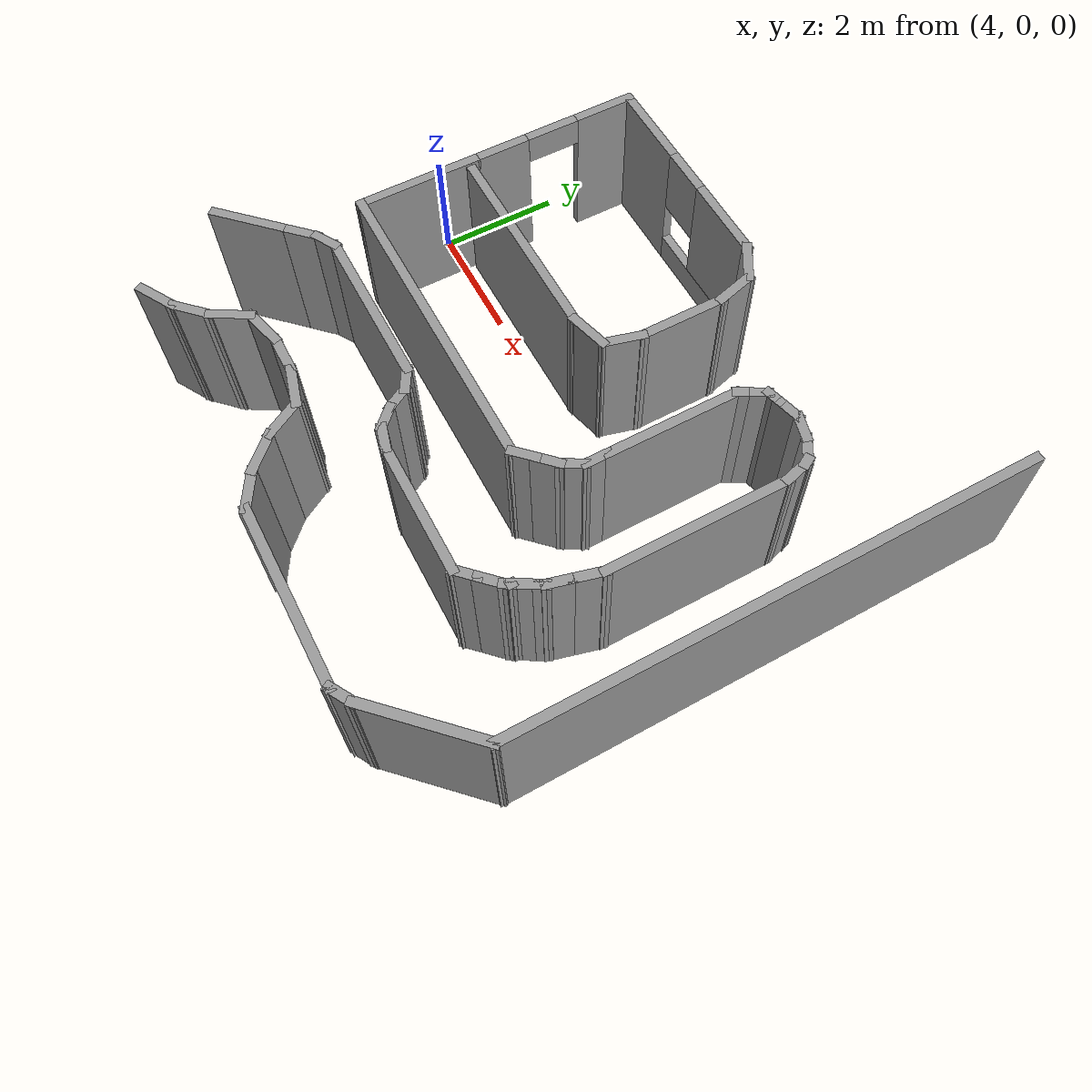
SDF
<sdf version="1.7">
 <model name="parcial_este_sii">
  <pose>1.2832 -0.231354 0 0 -0 0</pose>
  <link name="Wall_104">
   <collision name="Wall_104_Collision">
    <geometry><box><size>0.75 0.15 2.5</size></box></geometry>
    <pose>0 0 1.25 0 -0 0</pose>
   </collision>
   <visual name="Wall_104_Visual">
    <pose>0 0 1.25 0 -0 0</pose>
    <geometry><box><size>0.75 0.15 2.5</size></box></geometry>
    <material>
     <script><uri>file://media/materials/scripts/gazebo.material</uri><name>Gazebo/Grey</name></script>
     <ambient>1 1 1 1</ambient>
    </material>
    <meta><layer>0</layer></meta>
   </visual>
   <pose>3.4998 -4.7529 0 0 -0 0.523599</pose>
  </link>
  <link name="Wall_105">
   <collision name="Wall_105_Collision">
    <geometry><box><size>0.75 0.15 2.5</size></box></geometry>
    <pose>0 0 1.25 0 -0 0</pose>
   </collision>
   <visual name="Wall_105_Visual">
    <pose>0 0 1.25 0 -0 0</pose>
    <geometry><box><size>0.75 0.15 2.5</size></box></geometry>
    <material>
     <script><uri>file://media/materials/scripts/gazebo.material</uri><name>Gazebo/Grey</name></script>
     <ambient>1 1 1 1</ambient>
    </material>
    <meta><layer>0</layer></meta>
   </visual>
   <pose>3.97174 -4.39077 0 0 -0 0.785398</pose>
  </link>
  <link name="Wall_106">
   <collision name="Wall_106_Collision">
    <geometry><box><size>0.75 0.15 2.5</size></box></geometry>
    <pose>0 0 1.25 0 -0 0</pose>
   </collision>
   <visual name="Wall_106_Visual">
    <pose>0 0 1.25 0 -0 0</pose>
    <geometry><box><size>0.75 0.15 2.5</size></box></geometry>
    <material>
     <script><uri>file://media/materials/scripts/gazebo.material</uri><name>Gazebo/Grey</name></script>
     <ambient>1 1 1 1</ambient>
    </material>
    <meta><layer>0</layer></meta>
   </visual>
   <pose>4.33387 -3.91883 0 0 -0 1.0472</pose>
  </link>
  <link name="Wall_107">
   <collision name="Wall_107_Collision">
    <geometry><box><size>0.75 0.15 2.5</size></box></geometry>
    <pose>0 0 1.25 0 -0 0</pose>
   </collision>
   <visual name="Wall_107_Visual">
    <pose>0 0 1.25 0 -0 0</pose>
    <geometry><box><size>0.75 0.15 2.5</size></box></geometry>
    <material>
     <script><uri>file://media/materials/scripts/gazebo.material</uri><name>Gazebo/Grey</name></script>
     <ambient>1 1 1 1</ambient>
    </material>
    <meta><layer>0</layer></meta>
   </visual>
   <pose>4.77365 -3.58138 0 0 -0 0.261799</pose>
  </link>
  <link name="Wall_108">
   <collision name="Wall_108_Collision">
    <geometry><box><size>0.75 0.15 2.5</size></box></geometry>
    <pose>0 0 1.25 0 -0 0</pose>
   </collision>
   <visual name="Wall_108_Visual">
    <pose>0 0 1.25 0 -0 0</pose>
    <geometry><box><size>0.75 0.15 2.5</size></box></geometry>
    <material>
     <script><uri>file://media/materials/scripts/gazebo.material</uri><name>Gazebo/Grey</name></script>
     <ambient>1 1 1 1</ambient>
    </material>
    <meta><layer>0</layer></meta>
   </visual>
   <pose>5.36342 -3.50373 0 0 -0 0</pose>
  </link>
  <link name="Wall_109">
   <collision name="Wall_109_Collision">
    <geometry><box><size>0.75 0.15 2.5</size></box></geometry>
    <pose>0 0 1.25 0 -0 0</pose>
   </collision>
   <visual name="Wall_109_Visual">
    <pose>0 0 1.25 0 -0 0</pose>
    <geometry><box><size>0.75 0.15 2.5</size></box></geometry>
    <material>
     <script><uri>file://media/materials/scripts/gazebo.material</uri><name>Gazebo/Grey</name></script>
     <ambient>1 1 1 1</ambient>
    </material>
    <meta><layer>0</layer></meta>
   </visual>
   <pose>5.9532 -3.58138 0 0 -0 -0.261799</pose>
  </link>
  <link name="Wall_11">
   <collision name="Wall_11_Collision">
    <geometry><box><size>2.10889 0.15 2.5</size></box></geometry>
    <pose>0 0 1.25 0 -0 0</pose>
   </collision>
   <visual name="Wall_11_Visual">
    <pose>0 0 1.25 0 -0 0</pose>
    <geometry><box><size>2.10889 0.15 2.5</size></box></geometry>
    <material>
     <script><uri>file://media/materials/scripts/gazebo.material</uri><name>Gazebo/Grey</name></script>
     <ambient>1 1 1 1</ambient>
    </material>
    <meta><layer>0</layer></meta>
   </visual>
   <pose>3.29186 -0.374165 0 0 -0 -1.5708</pose>
  </link>
  <link name="Wall_110">
   <collision name="Wall_110_Collision">
    <geometry><box><size>0.75 0.15 2.5</size></box></geometry>
    <pose>0 0 1.25 0 -0 0</pose>
   </collision>
   <visual name="Wall_110_Visual">
    <pose>0 0 1.25 0 -0 0</pose>
    <geometry><box><size>0.75 0.15 2.5</size></box></geometry>
    <material>
     <script><uri>file://media/materials/scripts/gazebo.material</uri><name>Gazebo/Grey</name></script>
     <ambient>1 1 1 1</ambient>
    </material>
    <meta><layer>0</layer></meta>
   </visual>
   <pose>6.39298 -3.91883 0 0 -0 -1.0472</pose>
  </link>
  <link name="Wall_111">
   <collision name="Wall_111_Collision">
    <geometry><box><size>0.75 0.15 2.5</size></box></geometry>
    <pose>0 0 1.25 0 -0 0</pose>
   </collision>
   <visual name="Wall_111_Visual">
    <pose>0 0 1.25 0 -0 0</pose>
    <geometry><box><size>0.75 0.15 2.5</size></box></geometry>
    <material>
     <script><uri>file://media/materials/scripts/gazebo.material</uri><name>Gazebo/Grey</name></script>
     <ambient>1 1 1 1</ambient>
    </material>
    <meta><layer>0</layer></meta>
   </visual>
   <pose>6.75511 -4.39077 0 0 -0 -0.785398</pose>
  </link>
  <link name="Wall_112">
   <collision name="Wall_112_Collision">
    <geometry><box><size>0.75 0.15 2.5</size></box></geometry>
    <pose>0 0 1.25 0 -0 0</pose>
   </collision>
   <visual name="Wall_112_Visual">
    <pose>0 0 1.25 0 -0 0</pose>
    <geometry><box><size>0.75 0.15 2.5</size></box></geometry>
    <material>
     <script><uri>file://media/materials/scripts/gazebo.material</uri><name>Gazebo/Grey</name></script>
     <ambient>1 1 1 1</ambient>
    </material>
    <meta><layer>0</layer></meta>
   </visual>
   <pose>7.22705 -4.7529 0 0 -0 -0.523599</pose>
  </link>
  <link name="Wall_113">
   <collision name="Wall_113_Collision">
    <geometry><box><size>3 0.15 2.5</size></box></geometry>
    <pose>0 0 1.25 0 -0 0</pose>
   </collision>
   <visual name="Wall_113_Visual">
    <pose>0 0 1.25 0 -0 0</pose>
    <geometry><box><size>3 0.15 2.5</size></box></geometry>
    <material>
     <script><uri>file://media/materials/scripts/gazebo.material</uri><name>Gazebo/Grey</name></script>
     <ambient>1 1 1 1</ambient>
    </material>
    <meta><layer>0</layer></meta>
   </visual>
   <pose>8.91186 -4.9029 0 0 -0 0</pose>
  </link>
  <link name="Wall_114">
   <collision name="Wall_114_Collision">
    <geometry><box><size>0.5 0.15 2.5</size></box></geometry>
    <pose>0 0 1.25 0 -0 0</pose>
   </collision>
   <visual name="Wall_114_Visual">
    <pose>0 0 1.25 0 -0 0</pose>
    <geometry><box><size>0.5 0.15 2.5</size></box></geometry>
    <material>
     <script><uri>file://media/materials/scripts/gazebo.material</uri><name>Gazebo/Grey</name></script>
     <ambient>1 1 1 1</ambient>
    </material>
    <meta><layer>0</layer></meta>
   </visual>
   <pose>10.4884 -4.8154 0 0 -0 0.523599</pose>
  </link>
  <link name="Wall_116">
   <collision name="Wall_116_Collision">
    <geometry><box><size>2 0.15 2.5</size></box></geometry>
    <pose>0 0 1.25 0 -0 0</pose>
   </collision>
   <visual name="Wall_116_Visual">
    <pose>0 0 1.25 0 -0 0</pose>
    <geometry><box><size>2 0.15 2.5</size></box></geometry>
    <material>
     <script><uri>file://media/materials/scripts/gazebo.material</uri><name>Gazebo/Grey</name></script>
     <ambient>1 1 1 1</ambient>
    </material>
    <meta><layer>0</layer></meta>
   </visual>
   <pose>11.294 -4.07383 0 0 -0 0.785398</pose>
  </link>
  <link name="Wall_117">
   <collision name="Wall_117_Collision">
    <geometry><box><size>8.5 0.15 2.5</size></box></geometry>
    <pose>0 0 1.25 0 -0 0</pose>
   </collision>
   <visual name="Wall_117_Visual">
    <pose>0 0 1.25 0 -0 0</pose>
    <geometry><box><size>8.5 0.15 2.5</size></box></geometry>
    <material>
     <script><uri>file://media/materials/scripts/gazebo.material</uri><name>Gazebo/Grey</name></script>
     <ambient>1 1 1 1</ambient>
    </material>
    <meta><layer>0</layer></meta>
   </visual>
   <pose>11.9481 0.755247 0 0 -0 1.5708</pose>
  </link>
  <link name="Wall_12">
   <collision name="Wall_12_Collision">
    <geometry><box><size>5.25 0.15 2.5</size></box></geometry>
    <pose>0 0 1.25 0 -0 0</pose>
   </collision>
   <visual name="Wall_12_Visual">
    <pose>0 0 1.25 0 -0 0</pose>
    <geometry><box><size>5.25 0.15 2.5</size></box></geometry>
    <material>
     <script><uri>file://media/materials/scripts/gazebo.material</uri><name>Gazebo/Grey</name></script>
     <ambient>1 1 1 1</ambient>
    </material>
    <meta><layer>0</layer></meta>
   </visual>
   <pose>5.84186 -1.35361 0 0 -0 0</pose>
  </link>
  <link name="Wall_13">
   <collision name="Wall_13_Collision">
    <geometry><box><size>0.5 0.15 2.5</size></box></geometry>
    <pose>0 0 1.25 0 -0 0</pose>
   </collision>
   <visual name="Wall_13_Visual">
    <pose>0 0 1.25 0 -0 0</pose>
    <geometry><box><size>0.5 0.15 2.5</size></box></geometry>
    <material>
     <script><uri>file://media/materials/scripts/gazebo.material</uri><name>Gazebo/Grey</name></script>
     <ambient>1 1 1 1</ambient>
    </material>
    <meta><layer>0</layer></meta>
   </visual>
   <pose>8.5156 -1.22986 0 0 -0 0.785398</pose>
  </link>
  <link name="Wall_14">
   <collision name="Wall_14_Collision">
    <geometry><box><size>0.5 0.15 2.5</size></box></geometry>
    <pose>0 0 1.25 0 -0 0</pose>
   </collision>
   <visual name="Wall_14_Visual">
    <pose>0 0 1.25 0 -0 0</pose>
    <geometry><box><size>0.5 0.15 2.5</size></box></geometry>
    <material>
     <script><uri>file://media/materials/scripts/gazebo.material</uri><name>Gazebo/Grey</name></script>
     <ambient>1 1 1 1</ambient>
    </material>
    <meta><layer>0</layer></meta>
   </visual>
   <pose>8.76309 -0.982378 0 0 -0 0.785398</pose>
  </link>
  <link name="Wall_15">
   <collision name="Wall_15_Collision">
    <geometry><box><size>0.5 0.15 2.5</size></box></geometry>
    <pose>0 0 1.25 0 -0 0</pose>
   </collision>
   <visual name="Wall_15_Visual">
    <pose>0 0 1.25 0 -0 0</pose>
    <geometry><box><size>0.5 0.15 2.5</size></box></geometry>
    <material>
     <script><uri>file://media/materials/scripts/gazebo.material</uri><name>Gazebo/Grey</name></script>
     <ambient>1 1 1 1</ambient>
    </material>
    <meta><layer>0</layer></meta>
   </visual>
   <pose>8.97433 -0.707079 0 0 -0 1.0472</pose>
  </link>
  <link name="Wall_16">
   <collision name="Wall_16_Collision">
    <geometry><box><size>0.5 0.15 2.5</size></box></geometry>
    <pose>0 0 1.25 0 -0 0</pose>
   </collision>
   <visual name="Wall_16_Visual">
    <pose>0 0 1.25 0 -0 0</pose>
    <geometry><box><size>0.5 0.15 2.5</size></box></geometry>
    <material>
     <script><uri>file://media/materials/scripts/gazebo.material</uri><name>Gazebo/Grey</name></script>
     <ambient>1 1 1 1</ambient>
    </material>
    <meta><layer>0</layer></meta>
   </visual>
   <pose>9.06184 -0.380525 0 0 -0 1.5708</pose>
  </link>
  <link name="Wall_17">
   <collision name="Wall_17_Collision">
    <geometry><box><size>2.25 0.15 2.5</size></box></geometry>
    <pose>0 0 1.25 0 -0 0</pose>
   </collision>
   <visual name="Wall_17_Visual">
    <pose>0 0 1.25 0 -0 0</pose>
    <geometry><box><size>2.25 0.15 2.5</size></box></geometry>
    <material>
     <script><uri>file://media/materials/scripts/gazebo.material</uri><name>Gazebo/Grey</name></script>
     <ambient>1 1 1 1</ambient>
    </material>
    <meta><layer>0</layer></meta>
   </visual>
   <pose>9.06184 0.844475 0 0 -0 1.5708</pose>
  </link>
  <link name="Wall_18">
   <collision name="Wall_18_Collision">
    <geometry><box><size>0.25 0.15 2.5</size></box></geometry>
    <pose>0 0 1.25 0 -0 0</pose>
   </collision>
   <visual name="Wall_18_Visual">
    <pose>0 0 1.25 0 -0 0</pose>
    <geometry><box><size>0.25 0.15 2.5</size></box></geometry>
    <material>
     <script><uri>file://media/materials/scripts/gazebo.material</uri><name>Gazebo/Grey</name></script>
     <ambient>1 1 1 1</ambient>
    </material>
    <meta><layer>0</layer></meta>
   </visual>
   <pose>9.08684 1.93778 0 0 -0 1.0472</pose>
  </link>
  <link name="Wall_19">
   <collision name="Wall_19_Collision">
    <geometry><box><size>0.5 0.15 2.5</size></box></geometry>
    <pose>0 0 1.25 0 -0 0</pose>
   </collision>
   <visual name="Wall_19_Visual">
    <pose>0 0 1.25 0 -0 0</pose>
    <geometry><box><size>0.5 0.15 2.5</size></box></geometry>
    <material>
     <script><uri>file://media/materials/scripts/gazebo.material</uri><name>Gazebo/Grey</name></script>
     <ambient>1 1 1 1</ambient>
    </material>
    <meta><layer>0</layer></meta>
   </visual>
   <pose>9.19933 2.13263 0 0 -0 1.0472</pose>
  </link>
  <link name="Wall_20">
   <collision name="Wall_20_Collision">
    <geometry><box><size>0.25 0.15 2.5</size></box></geometry>
    <pose>0 0 1.25 0 -0 0</pose>
   </collision>
   <visual name="Wall_20_Visual">
    <pose>0 0 1.25 0 -0 0</pose>
    <geometry><box><size>0.25 0.15 2.5</size></box></geometry>
    <material>
     <script><uri>file://media/materials/scripts/gazebo.material</uri><name>Gazebo/Grey</name></script>
     <ambient>1 1 1 1</ambient>
    </material>
    <meta><layer>0</layer></meta>
   </visual>
   <pose>9.33513 2.29713 0 0 -0 0.261799</pose>
  </link>
  <link name="Wall_21">
   <collision name="Wall_21_Collision">
    <geometry><box><size>0.25 0.15 2.5</size></box></geometry>
    <pose>0 0 1.25 0 -0 0</pose>
   </collision>
   <visual name="Wall_21_Visual">
    <pose>0 0 1.25 0 -0 0</pose>
    <geometry><box><size>0.25 0.15 2.5</size></box></geometry>
    <material>
     <script><uri>file://media/materials/scripts/gazebo.material</uri><name>Gazebo/Grey</name></script>
     <ambient>1 1 1 1</ambient>
    </material>
    <meta><layer>0</layer></meta>
   </visual>
   <pose>9.43172 2.32301 0 0 -0 0.261799</pose>
  </link>
  <link name="Wall_22">
   <collision name="Wall_22_Collision">
    <geometry><box><size>0.5 0.15 2.5</size></box></geometry>
    <pose>0 0 1.25 0 -0 0</pose>
   </collision>
   <visual name="Wall_22_Visual">
    <pose>0 0 1.25 0 -0 0</pose>
    <geometry><box><size>0.5 0.15 2.5</size></box></geometry>
    <material>
     <script><uri>file://media/materials/scripts/gazebo.material</uri><name>Gazebo/Grey</name></script>
     <ambient>1 1 1 1</ambient>
    </material>
    <meta><layer>0</layer></meta>
   </visual>
   <pose>9.64906 2.38124 0 0 -0 0.261799</pose>
  </link>
  <link name="Wall_23">
   <collision name="Wall_23_Collision">
    <geometry><box><size>0.5 0.15 2.5</size></box></geometry>
    <pose>0 0 1.25 0 -0 0</pose>
   </collision>
   <visual name="Wall_23_Visual">
    <pose>0 0 1.25 0 -0 0</pose>
    <geometry><box><size>0.5 0.15 2.5</size></box></geometry>
    <material>
     <script><uri>file://media/materials/scripts/gazebo.material</uri><name>Gazebo/Grey</name></script>
     <ambient>1 1 1 1</ambient>
    </material>
    <meta><layer>0</layer></meta>
   </visual>
   <pose>9.98713 2.38124 0 0 -0 -0.261799</pose>
  </link>
  <link name="Wall_24">
   <collision name="Wall_24_Collision">
    <geometry><box><size>0.5 0.15 2.5</size></box></geometry>
    <pose>0 0 1.25 0 -0 0</pose>
   </collision>
   <visual name="Wall_24_Visual">
    <pose>0 0 1.25 0 -0 0</pose>
    <geometry><box><size>0.5 0.15 2.5</size></box></geometry>
    <material>
     <script><uri>file://media/materials/scripts/gazebo.material</uri><name>Gazebo/Grey</name></script>
     <ambient>1 1 1 1</ambient>
    </material>
    <meta><layer>0</layer></meta>
   </visual>
   <pose>10.3077 2.24845 0 0 -0 -0.523599</pose>
  </link>
  <link name="Wall_25">
   <collision name="Wall_25_Collision">
    <geometry><box><size>0.25 0.15 2.5</size></box></geometry>
    <pose>0 0 1.25 0 -0 0</pose>
   </collision>
   <visual name="Wall_25_Visual">
    <pose>0 0 1.25 0 -0 0</pose>
    <geometry><box><size>0.25 0.15 2.5</size></box></geometry>
    <material>
     <script><uri>file://media/materials/scripts/gazebo.material</uri><name>Gazebo/Grey</name></script>
     <ambient>1 1 1 1</ambient>
    </material>
    <meta><layer>0</layer></meta>
   </visual>
   <pose>10.4843 2.11765 0 0 -0 -1.0472</pose>
  </link>
  <link name="Wall_26">
   <collision name="Wall_26_Collision">
    <geometry><box><size>0.5 0.15 2.5</size></box></geometry>
    <pose>0 0 1.25 0 -0 0</pose>
   </collision>
   <visual name="Wall_26_Visual">
    <pose>0 0 1.25 0 -0 0</pose>
    <geometry><box><size>0.5 0.15 2.5</size></box></geometry>
    <material>
     <script><uri>file://media/materials/scripts/gazebo.material</uri><name>Gazebo/Grey</name></script>
     <ambient>1 1 1 1</ambient>
    </material>
    <meta><layer>0</layer></meta>
   </visual>
   <pose>10.5546 1.90531 0 0 -0 -1.309</pose>
  </link>
  <link name="Wall_27">
   <collision name="Wall_27_Collision">
    <geometry><box><size>3 0.15 2.5</size></box></geometry>
    <pose>0 0 1.25 0 -0 0</pose>
   </collision>
   <visual name="Wall_27_Visual">
    <pose>0 0 1.25 0 -0 0</pose>
    <geometry><box><size>3 0.15 2.5</size></box></geometry>
    <material>
     <script><uri>file://media/materials/scripts/gazebo.material</uri><name>Gazebo/Grey</name></script>
     <ambient>1 1 1 1</ambient>
    </material>
    <meta><layer>0</layer></meta>
   </visual>
   <pose>10.5999 0.311274 0 0 -0 -1.5708</pose>
  </link>
  <link name="Wall_28">
   <collision name="Wall_28_Collision">
    <geometry><box><size>0.5 0.15 2.5</size></box></geometry>
    <pose>0 0 1.25 0 -0 0</pose>
   </collision>
   <visual name="Wall_28_Visual">
    <pose>0 0 1.25 0 -0 0</pose>
    <geometry><box><size>0.5 0.15 2.5</size></box></geometry>
    <material>
     <script><uri>file://media/materials/scripts/gazebo.material</uri><name>Gazebo/Grey</name></script>
     <ambient>1 1 1 1</ambient>
    </material>
    <meta><layer>0</layer></meta>
   </visual>
   <pose>10.5546 -1.28276 0 0 -0 -1.8326</pose>
  </link>
  <link name="Wall_29">
   <collision name="Wall_29_Collision">
    <geometry><box><size>0.25 0.15 2.5</size></box></geometry>
    <pose>0 0 1.25 0 -0 0</pose>
   </collision>
   <visual name="Wall_29_Visual">
    <pose>0 0 1.25 0 -0 0</pose>
    <geometry><box><size>0.25 0.15 2.5</size></box></geometry>
    <material>
     <script><uri>file://media/materials/scripts/gazebo.material</uri><name>Gazebo/Grey</name></script>
     <ambient>1 1 1 1</ambient>
    </material>
    <meta><layer>0</layer></meta>
   </visual>
   <pose>10.4963 -1.5001 0 0 -0 -1.8326</pose>
  </link>
  <link name="Wall_30">
   <collision name="Wall_30_Collision">
    <geometry><box><size>0.5 0.15 2.5</size></box></geometry>
    <pose>0 0 1.25 0 -0 0</pose>
   </collision>
   <visual name="Wall_30_Visual">
    <pose>0 0 1.25 0 -0 0</pose>
    <geometry><box><size>0.5 0.15 2.5</size></box></geometry>
    <material>
     <script><uri>file://media/materials/scripts/gazebo.material</uri><name>Gazebo/Grey</name></script>
     <ambient>1 1 1 1</ambient>
    </material>
    <meta><layer>0</layer></meta>
   </visual>
   <pose>10.4381 -1.71743 0 0 -0 -1.8326</pose>
  </link>
  <link name="Wall_31">
   <collision name="Wall_31_Collision">
    <geometry><box><size>0.25 0.15 2.5</size></box></geometry>
    <pose>0 0 1.25 0 -0 0</pose>
   </collision>
   <visual name="Wall_31_Visual">
    <pose>0 0 1.25 0 -0 0</pose>
    <geometry><box><size>0.25 0.15 2.5</size></box></geometry>
    <material>
     <script><uri>file://media/materials/scripts/gazebo.material</uri><name>Gazebo/Grey</name></script>
     <ambient>1 1 1 1</ambient>
    </material>
    <meta><layer>0</layer></meta>
   </visual>
   <pose>10.3678 -1.92977 0 0 -0 -2.0944</pose>
  </link>
  <link name="Wall_32">
   <collision name="Wall_32_Collision">
    <geometry><box><size>0.5 0.15 2.5</size></box></geometry>
    <pose>0 0 1.25 0 -0 0</pose>
   </collision>
   <visual name="Wall_32_Visual">
    <pose>0 0 1.25 0 -0 0</pose>
    <geometry><box><size>0.5 0.15 2.5</size></box></geometry>
    <material>
     <script><uri>file://media/materials/scripts/gazebo.material</uri><name>Gazebo/Grey</name></script>
     <ambient>1 1 1 1</ambient>
    </material>
    <meta><layer>0</layer></meta>
   </visual>
   <pose>10.2553 -2.12462 0 0 -0 -2.0944</pose>
  </link>
  <link name="Wall_33">
   <collision name="Wall_33_Collision">
    <geometry><box><size>0.15 0.15 2.5</size></box></geometry>
    <pose>0 0 1.25 0 -0 0</pose>
   </collision>
   <visual name="Wall_33_Visual">
    <pose>0 0 1.25 0 -0 0</pose>
    <geometry><box><size>0.15 0.15 2.5</size></box></geometry>
    <material>
     <script><uri>file://media/materials/scripts/gazebo.material</uri><name>Gazebo/Grey</name></script>
     <ambient>1 1 1 1</ambient>
    </material>
    <meta><layer>0</layer></meta>
   </visual>
   <pose>10.1678 -2.27618 0 0 -0 0</pose>
  </link>
  <link name="Wall_34">
   <collision name="Wall_34_Collision">
    <geometry><box><size>0.25 0.15 2.5</size></box></geometry>
    <pose>0 0 1.25 0 -0 0</pose>
   </collision>
   <visual name="Wall_34_Visual">
    <pose>0 0 1.25 0 -0 0</pose>
    <geometry><box><size>0.25 0.15 2.5</size></box></geometry>
    <material>
     <script><uri>file://media/materials/scripts/gazebo.material</uri><name>Gazebo/Grey</name></script>
     <ambient>1 1 1 1</ambient>
    </material>
    <meta><layer>0</layer></meta>
   </visual>
   <pose>10.1428 -2.31948 0 0 -0 -2.0944</pose>
  </link>
  <link name="Wall_35">
   <collision name="Wall_35_Collision">
    <geometry><box><size>0.5 0.15 2.5</size></box></geometry>
    <pose>0 0 1.25 0 -0 0</pose>
   </collision>
   <visual name="Wall_35_Visual">
    <pose>0 0 1.25 0 -0 0</pose>
    <geometry><box><size>0.5 0.15 2.5</size></box></geometry>
    <material>
     <script><uri>file://media/materials/scripts/gazebo.material</uri><name>Gazebo/Grey</name></script>
     <ambient>1 1 1 1</ambient>
    </material>
    <meta><layer>0</layer></meta>
   </visual>
   <pose>9.99407 -2.48652 0 0 -0 -2.35619</pose>
  </link>
  <link name="Wall_36">
   <collision name="Wall_36_Collision">
    <geometry><box><size>0.5 0.15 2.5</size></box></geometry>
    <pose>0 0 1.25 0 -0 0</pose>
   </collision>
   <visual name="Wall_36_Visual">
    <pose>0 0 1.25 0 -0 0</pose>
    <geometry><box><size>0.5 0.15 2.5</size></box></geometry>
    <material>
     <script><uri>file://media/materials/scripts/gazebo.material</uri><name>Gazebo/Grey</name></script>
     <ambient>1 1 1 1</ambient>
    </material>
    <meta><layer>0</layer></meta>
   </visual>
   <pose>9.74658 -2.73401 0 0 -0 -2.35619</pose>
  </link>
  <link name="Wall_37">
   <collision name="Wall_37_Collision">
    <geometry><box><size>2.25 0.15 2.5</size></box></geometry>
    <pose>0 0 1.25 0 -0 0</pose>
   </collision>
   <visual name="Wall_37_Visual">
    <pose>0 0 1.25 0 -0 0</pose>
    <geometry><box><size>2.25 0.15 2.5</size></box></geometry>
    <material>
     <script><uri>file://media/materials/scripts/gazebo.material</uri><name>Gazebo/Grey</name></script>
     <ambient>1 1 1 1</ambient>
    </material>
    <meta><layer>0</layer></meta>
   </visual>
   <pose>8.57283 -2.85776 0 0 -0 3.14159</pose>
  </link>
  <link name="Wall_38">
   <collision name="Wall_38_Collision">
    <geometry><box><size>0.5 0.15 2.5</size></box></geometry>
    <pose>0 0 1.25 0 -0 0</pose>
   </collision>
   <visual name="Wall_38_Visual">
    <pose>0 0 1.25 0 -0 0</pose>
    <geometry><box><size>0.5 0.15 2.5</size></box></geometry>
    <material>
     <script><uri>file://media/materials/scripts/gazebo.material</uri><name>Gazebo/Grey</name></script>
     <ambient>1 1 1 1</ambient>
    </material>
    <meta><layer>0</layer></meta>
   </visual>
   <pose>7.3538 -2.81246 0 0 -0 2.87979</pose>
  </link>
  <link name="Wall_39">
   <collision name="Wall_39_Collision">
    <geometry><box><size>0.5 0.15 2.5</size></box></geometry>
    <pose>0 0 1.25 0 -0 0</pose>
   </collision>
   <visual name="Wall_39_Visual">
    <pose>0 0 1.25 0 -0 0</pose>
    <geometry><box><size>0.5 0.15 2.5</size></box></geometry>
    <material>
     <script><uri>file://media/materials/scripts/gazebo.material</uri><name>Gazebo/Grey</name></script>
     <ambient>1 1 1 1</ambient>
    </material>
    <meta><layer>0</layer></meta>
   </visual>
   <pose>7.06102 -2.64343 0 0 -0 2.35619</pose>
  </link>
  <link name="Wall_40">
   <collision name="Wall_40_Collision">
    <geometry><box><size>0.5 0.15 2.5</size></box></geometry>
    <pose>0 0 1.25 0 -0 0</pose>
   </collision>
   <visual name="Wall_40_Visual">
    <pose>0 0 1.25 0 -0 0</pose>
    <geometry><box><size>0.5 0.15 2.5</size></box></geometry>
    <material>
     <script><uri>file://media/materials/scripts/gazebo.material</uri><name>Gazebo/Grey</name></script>
     <ambient>1 1 1 1</ambient>
    </material>
    <meta><layer>0</layer></meta>
   </visual>
   <pose>6.84977 -2.36813 0 0 -0 2.0944</pose>
  </link>
  <link name="Wall_41">
   <collision name="Wall_41_Collision">
    <geometry><box><size>0.5 0.15 2.5</size></box></geometry>
    <pose>0 0 1.25 0 -0 0</pose>
   </collision>
   <visual name="Wall_41_Visual">
    <pose>0 0 1.25 0 -0 0</pose>
    <geometry><box><size>0.5 0.15 2.5</size></box></geometry>
    <material>
     <script><uri>file://media/materials/scripts/gazebo.material</uri><name>Gazebo/Grey</name></script>
     <ambient>1 1 1 1</ambient>
    </material>
    <meta><layer>0</layer></meta>
   </visual>
   <pose>6.61072 -2.12907 0 0 -0 2.61799</pose>
  </link>
  <link name="Wall_42">
   <collision name="Wall_42_Collision">
    <geometry><box><size>2.75 0.15 2.5</size></box></geometry>
    <pose>0 0 1.25 0 -0 0</pose>
   </collision>
   <visual name="Wall_42_Visual">
    <pose>0 0 1.25 0 -0 0</pose>
    <geometry><box><size>2.75 0.15 2.5</size></box></geometry>
    <material>
     <script><uri>file://media/materials/scripts/gazebo.material</uri><name>Gazebo/Grey</name></script>
     <ambient>1 1 1 1</ambient>
    </material>
    <meta><layer>0</layer></meta>
   </visual>
   <pose>5.15916 -2.04157 0 0 -0 3.14159</pose>
  </link>
  <link name="Wall_43">
   <collision name="Wall_43_Collision">
    <geometry><box><size>0.5 0.15 2.5</size></box></geometry>
    <pose>0 0 1.25 0 -0 0</pose>
   </collision>
   <visual name="Wall_43_Visual">
    <pose>0 0 1.25 0 -0 0</pose>
    <geometry><box><size>0.5 0.15 2.5</size></box></geometry>
    <material>
     <script><uri>file://media/materials/scripts/gazebo.material</uri><name>Gazebo/Grey</name></script>
     <ambient>1 1 1 1</ambient>
    </material>
    <meta><layer>0</layer></meta>
   </visual>
   <pose>3.70761 -2.12907 0 0 -0 -2.61799</pose>
  </link>
  <link name="Wall_44">
   <collision name="Wall_44_Collision">
    <geometry><box><size>0.75 0.15 2.5</size></box></geometry>
    <pose>0 0 1.25 0 -0 0</pose>
   </collision>
   <visual name="Wall_44_Visual">
    <pose>0 0 1.25 0 -0 0</pose>
    <geometry><box><size>0.75 0.15 2.5</size></box></geometry>
    <material>
     <script><uri>file://media/materials/scripts/gazebo.material</uri><name>Gazebo/Grey</name></script>
     <ambient>1 1 1 1</ambient>
    </material>
    <meta><layer>0</layer></meta>
   </visual>
   <pose>3.34392 -2.4287 0 0 -0 -2.35619</pose>
  </link>
  <link name="Wall_47">
   <collision name="Wall_47_Collision">
    <geometry><box><size>1.25 0.15 2.5</size></box></geometry>
    <pose>0 0 1.25 0 -0 0</pose>
   </collision>
   <visual name="Wall_47_Visual">
    <pose>0 0 1.25 0 -0 0</pose>
    <geometry><box><size>1.25 0.15 2.5</size></box></geometry>
    <material>
     <script><uri>file://media/materials/scripts/gazebo.material</uri><name>Gazebo/Grey</name></script>
     <ambient>1 1 1 1</ambient>
    </material>
    <meta><layer>0</layer></meta>
   </visual>
   <pose>2.74288 -3.02975 0 0 -0 -2.35619</pose>
  </link>
  <link name="Wall_70">
   <pose>3.29186 2.03028 0 0 -0 1.5708</pose>
   <visual name="Wall_70_Visual_0">
    <pose>-0.984855 0 1.25 0 -0 0</pose>
    <geometry><box><size>1.03029 0.15 2.5</size></box></geometry>
    <material>
     <script><uri>file://media/materials/scripts/gazebo.material</uri><name>Gazebo/Grey</name></script>
     <ambient>1 1 1 1</ambient>
    </material>
    <meta><layer>0</layer></meta>
   </visual>
   <collision name="Wall_70_Collision_0">
    <geometry><box><size>1.03029 0.15 2.5</size></box></geometry>
    <pose>-0.984855 0 1.25 0 -0 0</pose>
   </collision>
   <visual name="Wall_70_Visual_1">
    <pose>0.965145 0 1.25 0 -0 0</pose>
    <geometry><box><size>1.06971 0.15 2.5</size></box></geometry>
    <material>
     <script><uri>file://media/materials/scripts/gazebo.material</uri><name>Gazebo/Grey</name></script>
     <ambient>1 1 1 1</ambient>
    </material>
    <meta><layer>0</layer></meta>
   </visual>
   <collision name="Wall_70_Collision_1">
    <geometry><box><size>1.06971 0.15 2.5</size></box></geometry>
    <pose>0.965145 0 1.25 0 -0 0</pose>
   </collision>
   <visual name="Wall_70_Visual_2">
    <pose>-0.01971 0 2.25 0 -0 0</pose>
    <geometry><box><size>0.9 0.15 0.5</size></box></geometry>
    <material>
     <script><uri>file://media/materials/scripts/gazebo.material</uri><name>Gazebo/Grey</name></script>
     <ambient>1 1 1 1</ambient>
    </material>
    <meta><layer>0</layer></meta>
   </visual>
   <collision name="Wall_70_Collision_2">
    <geometry><box><size>0.9 0.15 0.5</size></box></geometry>
    <pose>-0.01971 0 2.25 0 -0 0</pose>
   </collision>
  </link>
  <link name="Wall_71">
   <pose>5.09186 3.45528 0 0 -0 0</pose>
   <visual name="Wall_71_Visual_0">
    <pose>-1.11158 0 1.25 0 -0 0</pose>
    <geometry><box><size>1.52683 0.15 2.5</size></box></geometry>
    <material>
     <script><uri>file://media/materials/scripts/gazebo.material</uri><name>Gazebo/Grey</name></script>
     <ambient>1 1 1 1</ambient>
    </material>
    <meta><layer>0</layer></meta>
   </visual>
   <collision name="Wall_71_Collision_0">
    <geometry><box><size>1.52683 0.15 2.5</size></box></geometry>
    <pose>-1.11158 0 1.25 0 -0 0</pose>
   </collision>
   <visual name="Wall_71_Visual_1">
    <pose>0.763418 0 0.25 0 -0 0</pose>
    <geometry><box><size>2.22316 0.15 0.5</size></box></geometry>
    <material>
     <script><uri>file://media/materials/scripts/gazebo.material</uri><name>Gazebo/Grey</name></script>
     <ambient>1 1 1 1</ambient>
    </material>
    <meta><layer>0</layer></meta>
   </visual>
   <collision name="Wall_71_Collision_1">
    <geometry><box><size>2.22316 0.15 0.5</size></box></geometry>
    <pose>0.763418 0 0.25 0 -0 0</pose>
   </collision>
   <visual name="Wall_71_Visual_2">
    <pose>1.16342 0 1.5 0 -0 0</pose>
    <geometry><box><size>1.42317 0.15 2</size></box></geometry>
    <material>
     <script><uri>file://media/materials/scripts/gazebo.material</uri><name>Gazebo/Grey</name></script>
     <ambient>1 1 1 1</ambient>
    </material>
    <meta><layer>0</layer></meta>
   </visual>
   <collision name="Wall_71_Collision_2">
    <geometry><box><size>1.42317 0.15 2</size></box></geometry>
    <pose>1.16342 0 1.5 0 -0 0</pose>
   </collision>
   <visual name="Wall_71_Visual_3">
    <pose>0.051835 0 1.9 0 -0 0</pose>
    <geometry><box><size>0.8 0.15 1.2</size></box></geometry>
    <material>
     <script><uri>file://media/materials/scripts/gazebo.material</uri><name>Gazebo/Grey</name></script>
     <ambient>1 1 1 1</ambient>
    </material>
    <meta><layer>0</layer></meta>
   </visual>
   <collision name="Wall_71_Collision_3">
    <geometry><box><size>0.8 0.15 1.2</size></box></geometry>
    <pose>0.051835 0 1.9 0 -0 0</pose>
   </collision>
  </link>
  <link name="Wall_72">
   <collision name="Wall_72_Collision">
    <geometry><box><size>0.75 0.15 2.5</size></box></geometry>
    <pose>0 0 1.25 0 -0 0</pose>
   </collision>
   <visual name="Wall_72_Visual">
    <pose>0 0 1.25 0 -0 0</pose>
    <geometry><box><size>0.75 0.15 2.5</size></box></geometry>
    <material>
     <script><uri>file://media/materials/scripts/gazebo.material</uri><name>Gazebo/Grey</name></script>
     <ambient>1 1 1 1</ambient>
    </material>
    <meta><layer>0</layer></meta>
   </visual>
   <pose>7.15167 3.30528 0 0 -0 -0.523599</pose>
  </link>
  <link name="Wall_73">
   <collision name="Wall_73_Collision">
    <geometry><box><size>0.75 0.15 2.5</size></box></geometry>
    <pose>0 0 1.25 0 -0 0</pose>
   </collision>
   <visual name="Wall_73_Visual">
    <pose>0 0 1.25 0 -0 0</pose>
    <geometry><box><size>0.75 0.15 2.5</size></box></geometry>
    <material>
     <script><uri>file://media/materials/scripts/gazebo.material</uri><name>Gazebo/Grey</name></script>
     <ambient>1 1 1 1</ambient>
    </material>
    <meta><layer>0</layer></meta>
   </visual>
   <pose>7.48912 2.8655 0 0 -0 -1.309</pose>
  </link>
  <link name="Wall_74">
   <collision name="Wall_74_Collision">
    <geometry><box><size>1.5 0.15 2.5</size></box></geometry>
    <pose>0 0 1.25 0 -0 0</pose>
   </collision>
   <visual name="Wall_74_Visual">
    <pose>0 0 1.25 0 -0 0</pose>
    <geometry><box><size>1.5 0.15 2.5</size></box></geometry>
    <material>
     <script><uri>file://media/materials/scripts/gazebo.material</uri><name>Gazebo/Grey</name></script>
     <ambient>1 1 1 1</ambient>
    </material>
    <meta><layer>0</layer></meta>
   </visual>
   <pose>7.56677 1.90072 0 0 -0 -1.5708</pose>
  </link>
  <link name="Wall_75">
   <collision name="Wall_75_Collision">
    <geometry><box><size>0.75 0.15 2.5</size></box></geometry>
    <pose>0 0 1.25 0 -0 0</pose>
   </collision>
   <visual name="Wall_75_Visual">
    <pose>0 0 1.25 0 -0 0</pose>
    <geometry><box><size>0.75 0.15 2.5</size></box></geometry>
    <material>
     <script><uri>file://media/materials/scripts/gazebo.material</uri><name>Gazebo/Grey</name></script>
     <ambient>1 1 1 1</ambient>
    </material>
    <meta><layer>0</layer></meta>
   </visual>
   <pose>7.48912 0.935945 0 0 -0 -1.8326</pose>
  </link>
  <link name="Wall_76">
   <collision name="Wall_76_Collision">
    <geometry><box><size>0.75 0.15 2.5</size></box></geometry>
    <pose>0 0 1.25 0 -0 0</pose>
   </collision>
   <visual name="Wall_76_Visual">
    <pose>0 0 1.25 0 -0 0</pose>
    <geometry><box><size>0.75 0.15 2.5</size></box></geometry>
    <material>
     <script><uri>file://media/materials/scripts/gazebo.material</uri><name>Gazebo/Grey</name></script>
     <ambient>1 1 1 1</ambient>
    </material>
    <meta><layer>0</layer></meta>
   </visual>
   <pose>7.1217 0.568522 0 0 -0 -2.87979</pose>
  </link>
  <link name="Wall_77">
   <collision name="Wall_77_Collision">
    <geometry><box><size>3.5 0.15 2.5</size></box></geometry>
    <pose>0 0 1.25 0 -0 0</pose>
   </collision>
   <visual name="Wall_77_Visual">
    <pose>0 0 1.25 0 -0 0</pose>
    <geometry><box><size>3.5 0.15 2.5</size></box></geometry>
    <material>
     <script><uri>file://media/materials/scripts/gazebo.material</uri><name>Gazebo/Grey</name></script>
     <ambient>1 1 1 1</ambient>
    </material>
    <meta><layer>0</layer></meta>
   </visual>
   <pose>5.15692 0.490876 0 0 -0 3.14159</pose>
  </link>
  <static>1</static>
 </model>
</sdf>
